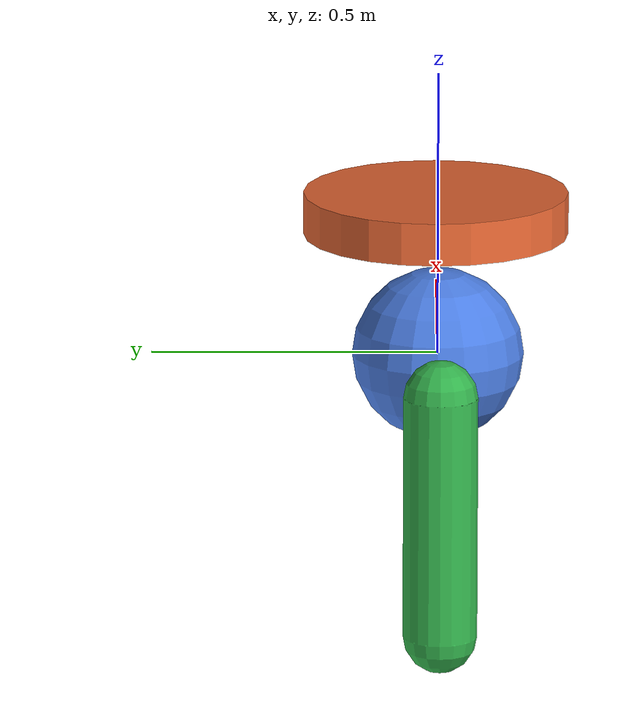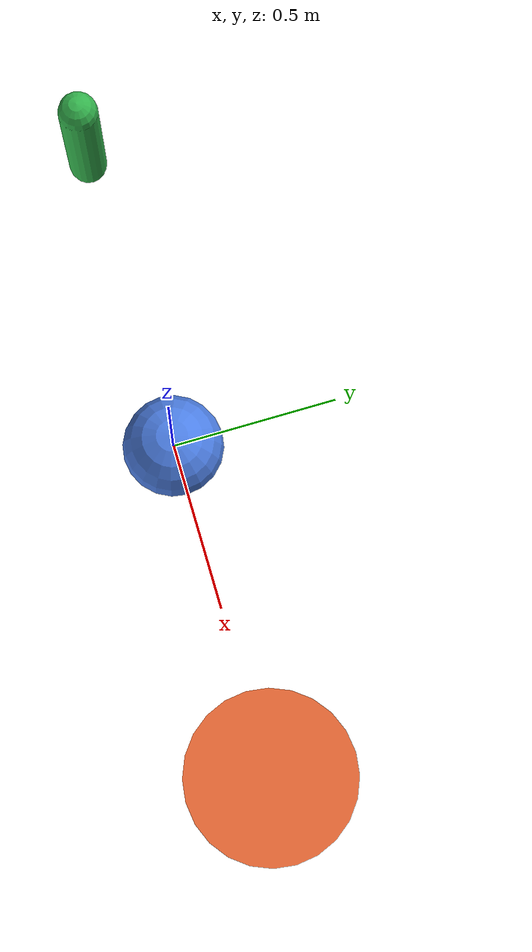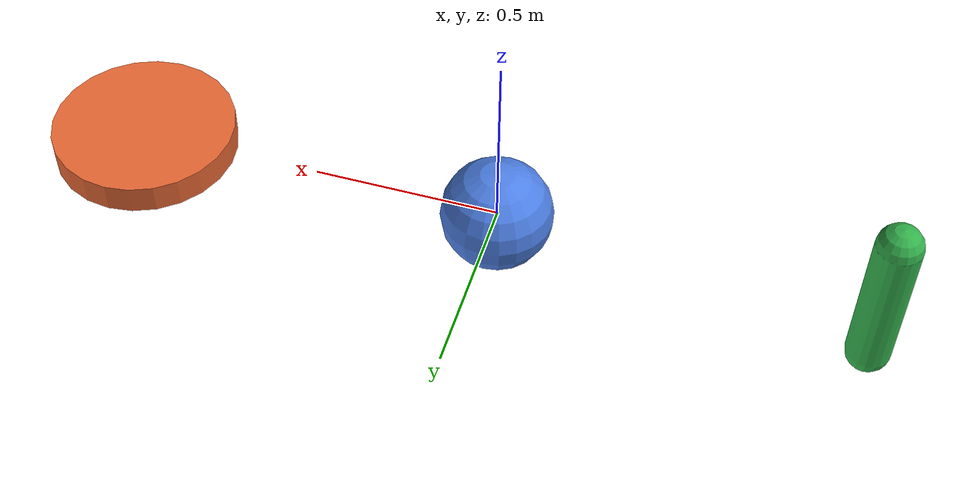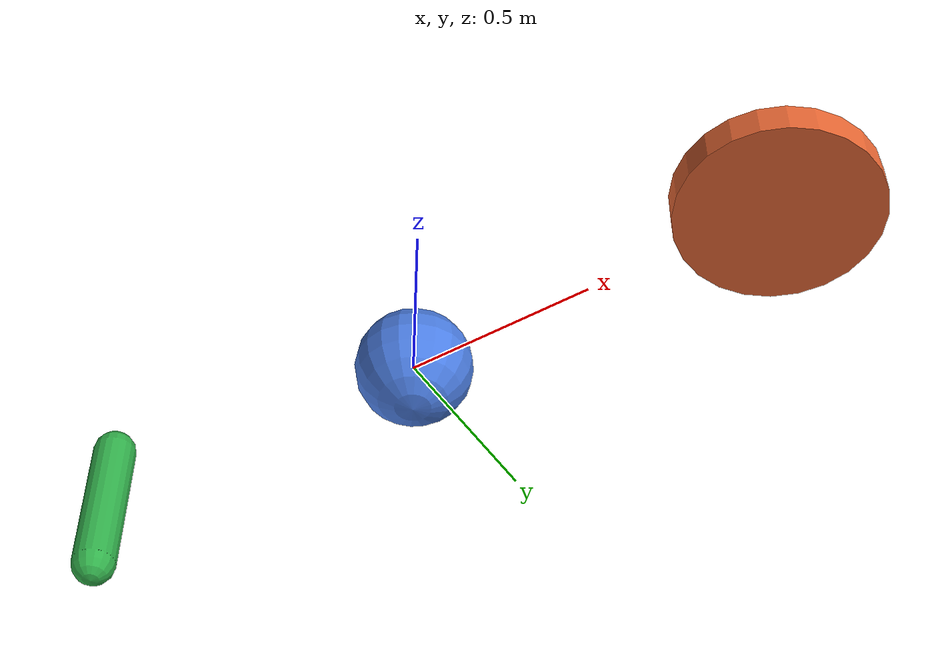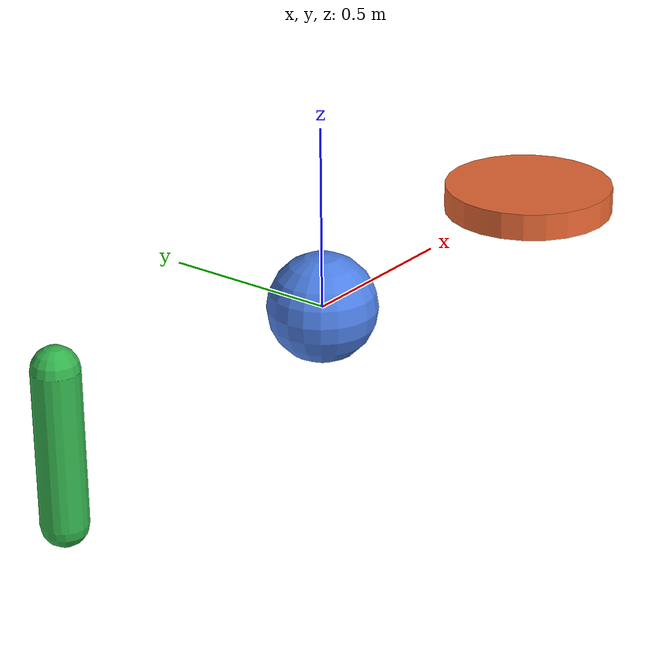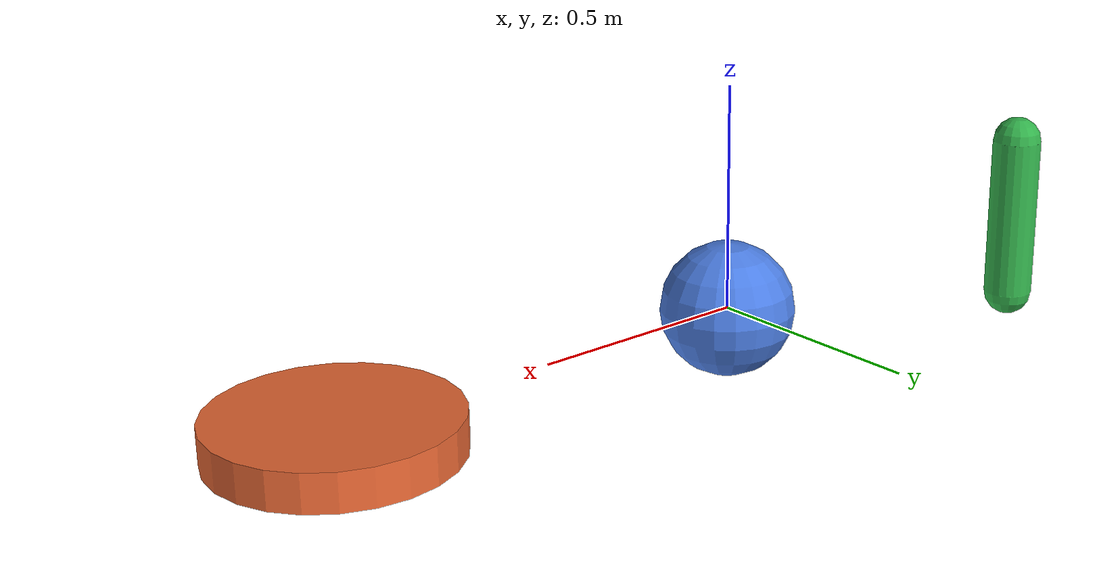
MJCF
<mujoco model="ellipsoid-drag">
  <option gravity="0 0 -9.81" timestep="0.002"
          density="500" viscosity="0.01"/>
  <worldbody>
    <body name="capsule" pos="-1 0 0">
      <freejoint name="cap_free"/>
      <geom name="cap_geom" type="capsule" size="0.06 0.2" mass="2.0"
            fluidshape="ellipsoid" rgba="0.2 0.7 0.3 1"/>
    </body>
    <body name="sphere" pos="0 0 0">
      <freejoint name="sph_free"/>
      <geom name="sph_geom" type="sphere" size="0.15" mass="2.0"
            fluidshape="ellipsoid" rgba="0.3 0.5 0.9 1"/>
    </body>
    <body name="cylinder" pos="1 0 0">
      <freejoint name="cyl_free"/>
      <geom name="cyl_geom" type="cylinder" size="0.25 0.04" mass="2.0"
            fluidshape="ellipsoid" rgba="0.9 0.4 0.2 1"/>
    </body>
  </worldbody>
</mujoco>
